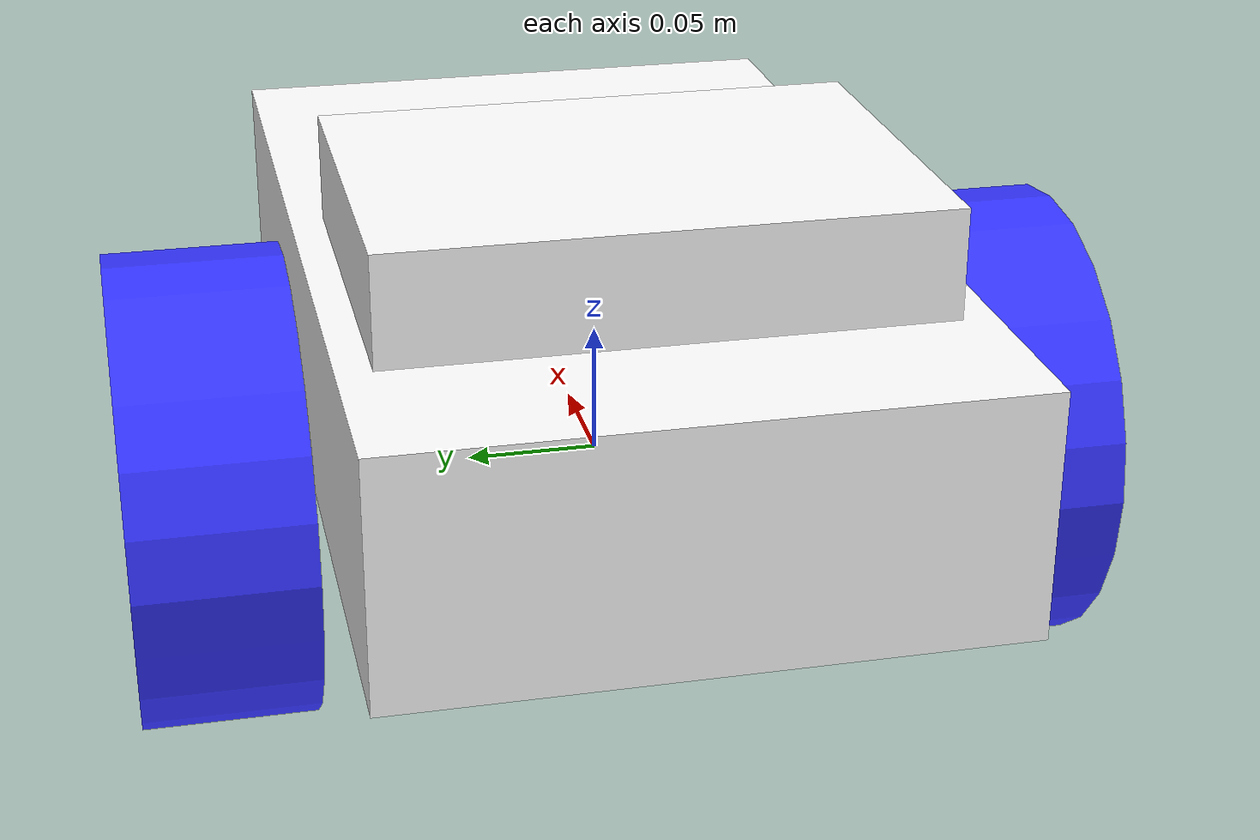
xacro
<?xml version="1.0"?>
<robot xmlns:xacro="http://www.ros.org/wiki/xacro">

    <xacro:include filename="inertial_macros.xacro"/>

    <xacro:property name="chassis_l" value="0.375"/>

    <material name="white">
        <color rgba="1 1 1 1"/>
    </material>

    <material name="orange">
        <color rgba="1 0.3 0.1 1"/>
    </material>

    <material name="blue">
        <color rgba="0.2 0.2 1 1"/>
    </material>

    <material name="black">
        <color rgba="0 0 0 1"/>
    </material>

   <material name="red">
        <color rgba="1 0 0 1"/>
    </material>

    <!-- Base Link_-->
    <link name="base_link">
    </link>

    <!-- Base footprint link -->
    <joint name="base_footprint_joint" type="fixed">
        <parent link="base_link" />
        <child link="base_footprint"/>
        <origin xyz="0 0 0" rpy="0 0 0"/>
    </joint>

    <link name="base_footprint">

    </link>

    <!-- Chassis link -->
    <joint name="chassis_joint" type="fixed">
        <parent link="base_link" />
        <child link="chassis"/>
        <origin xyz="-0.1875 0 0.006"/>
    </joint>

    <link name="chassis">
        <visual>
            <origin xyz="0.1875 0 0.045"/>
            <geometry>
                <box size="0.375 .225 .090"/>
            </geometry>
            <material name="white"/>
        </visual>
        <visual>
            <origin xyz="0.135 0 0.110"/>
            <geometry>
                <box size=".145 .200 .040"/>
            </geometry>
            <material name="white"/>
        </visual>
        <collision>
            <origin xyz="0 0 0"/>
            <geometry>
                <box size=".375 .225 .090"/>
            </geometry>
        </collision>
        <xacro:inertial_box mass="0.5" x="0.375" y="0.225" z="0.090">
            <origin xyz="0 0 0" rpy="0 0 0"/>
        </xacro:inertial_box>
    </link>

    <gazebo reference="chassis">
        <material>Gazebo/White</material>
    </gazebo>

<!-- Left Wheel Link_-->
    <joint name="left_wheel_joint" type="continuous">
        <parent link="base_link" />
        <child link="left_wheel"/>
        <origin xyz="0 0.150 0" rpy="-${pi/2} 0 0"/>
        <axis xyz="0 0 1"/>
    </joint>

    <link name="left_wheel">
        <visual>
            <geometry>
                <cylinder radius="0.09" length="0.066"/>
            </geometry>
            <material name="blue"/>
       </visual>
        <collision>
            <geometry>
                <cylinder radius="0.09" length="0.066"/>
            </geometry>
       </collision>
        <xacro:inertial_cylinder mass="0.1" length="0.04" radius="0.01">
            <origin xyz="0 0 0" rpy="0 0 0"/>
        </xacro:inertial_cylinder>
    </link>

    <gazebo reference="left_wheel">
        <material>Gazebo/Blue</material>
    </gazebo>

    <!-- Right Wheel Link_-->
    <joint name="right_wheel_joint" type="continuous">
        <parent link="base_link" />
        <child link="right_wheel"/>
        <origin xyz="0 -0.150 0" rpy="${pi/2} 0 0"/>
        <axis xyz="0 0 -1"/>
    </joint>

    <link name="right_wheel">
        <visual>
            <geometry>
                <cylinder radius="0.09" length="0.066"/>
            </geometry>
            <material name="blue"/>
       </visual>
        <collision>
            <geometry>
                <cylinder radius="0.09" length="0.066"/>
            </geometry>
       </collision>
        <xacro:inertial_cylinder mass="0.1" length="0.04" radius="0.01">
            <origin xyz="0 0 0" rpy="0 0 0"/>
        </xacro:inertial_cylinder>
    </link>

    <gazebo reference="right_wheel">
        <material>Gazebo/Blue</material>
    </gazebo>

    <!-- Castor Wheel Link_-->
    <joint name="castor_wheel_joint" type="fixed">
        <parent link="base_link" />
        <child link="castor_wheel"/>
        <origin xyz="0.1 0 -0.0"/>
    </joint>

    <link name="castor_wheel">
        <visual>
            <geometry>
                <sphere radius="0.09"/>
            </geometry>
            <material name="black"/>
       </visual>
        <collision>
            <geometry>
                <sphere radius="0.09"/>
            </geometry>
       </collision>
        <xacro:inertial_sphere mass="0.1" radius="0.09">
            <origin xyz="0 0 0" rpy="0 0 0"/>
        </xacro:inertial_sphere>
    </link>
    <gazebo reference="castor_wheel">
        <material>Gazebo/Black</material>
        <mu1 value="0.001"/>
        <mu2 value="0.001"/>
    </gazebo>

</robot>
